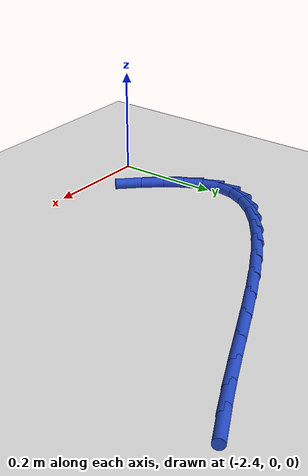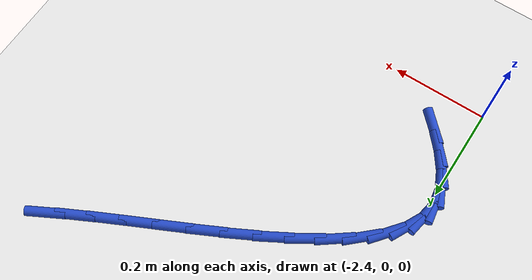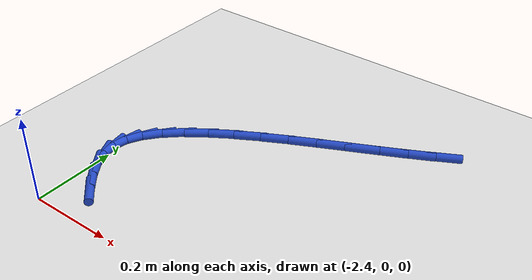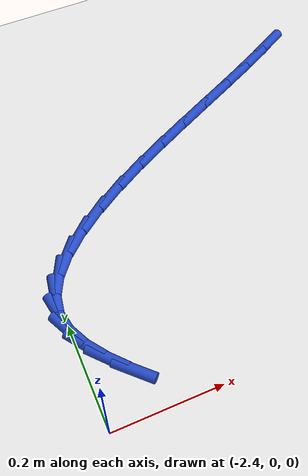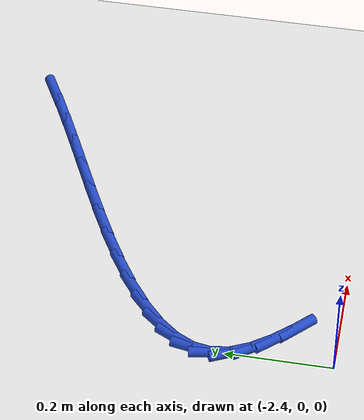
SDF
<sdf version="1.6">
 <world name="default">
  <model name="ground_plane">
   <static>1</static>
   <link name="link">
    <collision name="collision">
     <geometry><plane><normal>0 0 1</normal><size>100 100</size></plane></geometry>
     <surface><friction><ode><mu>100</mu><mu2>50</mu2></ode></friction></surface>
    </collision>
    <visual name="visual">
     <cast_shadows>0</cast_shadows>
     <geometry><plane><normal>0 0 1</normal><size>100 100</size></plane></geometry>
     <material>
      <script><uri>file://media/materials/scripts/gazebo.material</uri><name>Gazebo/WhiteGlow</name></script>
     </material>
    </visual>
   </link>
  </model>
  <model name="line">
   <link name="link_57">
    <pose>-1.7882824068994763 0.6488655964769138 0.01 0 1.57 0.4933935872202117</pose>
    <collision name="collision">
     <geometry><cylinder><radius>0.01</radius><length>0.08</length></cylinder></geometry>
    </collision>
    <visual name="visual">
     <material>
      <script><name>Gazebo/Blue</name><uri>file://media/materials/scripts/gazebo.material</uri></script>
     </material>
     <geometry><cylinder><radius>0.01</radius><length>0.08</length></cylinder></geometry>
    </visual>
   </link>
   <link name="link_58">
    <pose>-1.8399421476125468 0.6210853053375922 0.01 0 1.57 0.4704093641441977</pose>
    <collision name="collision">
     <geometry><cylinder><radius>0.01</radius><length>0.08</length></cylinder></geometry>
    </collision>
    <visual name="visual">
     <material>
      <script><name>Gazebo/Blue</name><uri>file://media/materials/scripts/gazebo.material</uri></script>
     </material>
     <geometry><cylinder><radius>0.01</radius><length>0.08</length></cylinder></geometry>
    </visual>
   </link>
   <link name="link_59">
    <pose>-1.8946203905497763 0.5932824578877812 0.01 0 1.57 0.45666396141137294</pose>
    <collision name="collision">
     <geometry><cylinder><radius>0.01</radius><length>0.08</length></cylinder></geometry>
    </collision>
    <visual name="visual">
     <material>
      <script><name>Gazebo/Blue</name><uri>file://media/materials/scripts/gazebo.material</uri></script>
     </material>
     <geometry><cylinder><radius>0.01</radius><length>0.08</length></cylinder></geometry>
    </visual>
   </link>
   <link name="link_60">
    <pose>-1.9518559533707762 0.5651625872057742 0.01 0 1.57 0.4522741626615246</pose>
    <collision name="collision">
     <geometry><cylinder><radius>0.01</radius><length>0.08</length></cylinder></geometry>
    </collision>
    <visual name="visual">
     <material>
      <script><name>Gazebo/Blue</name><uri>file://media/materials/scripts/gazebo.material</uri></script>
     </material>
     <geometry><cylinder><radius>0.01</radius><length>0.08</length></cylinder></geometry>
    </visual>
   </link>
   <link name="link_61">
    <pose>-2.010507952283484 0.5366657524746595 0.01 0 1.57 0.4565730462190267</pose>
    <collision name="collision">
     <geometry><cylinder><radius>0.01</radius><length>0.08</length></cylinder></geometry>
    </collision>
    <visual name="visual">
     <material>
      <script><name>Gazebo/Blue</name><uri>file://media/materials/scripts/gazebo.material</uri></script>
     </material>
     <geometry><cylinder><radius>0.01</radius><length>0.08</length></cylinder></geometry>
    </visual>
   </link>
   <link name="link_62">
    <pose>-2.06936190631584 0.5077574070559661 0.01 0 1.57 0.4696279134727496</pose>
    <collision name="collision">
     <geometry><cylinder><radius>0.01</radius><length>0.08</length></cylinder></geometry>
    </collision>
    <visual name="visual">
     <material>
      <script><name>Gazebo/Blue</name><uri>file://media/materials/scripts/gazebo.material</uri></script>
     </material>
     <geometry><cylinder><radius>0.01</radius><length>0.08</length></cylinder></geometry>
    </visual>
   </link>
   <link name="link_63">
    <pose>-2.127203334495774 0.47840300431122285 0.01 0 1.57 0.4923897369800903</pose>
    <collision name="collision">
     <geometry><cylinder><radius>0.01</radius><length>0.08</length></cylinder></geometry>
    </collision>
    <visual name="visual">
     <material>
      <script><name>Gazebo/Blue</name><uri>file://media/materials/scripts/gazebo.material</uri></script>
     </material>
     <geometry><cylinder><radius>0.01</radius><length>0.08</length></cylinder></geometry>
    </visual>
   </link>
   <link name="link_64">
    <pose>-2.182817755851227 0.44856799760195876 0.01 0 1.57 0.5268715682375054</pose>
    <collision name="collision">
     <geometry><cylinder><radius>0.01</radius><length>0.08</length></cylinder></geometry>
    </collision>
    <visual name="visual">
     <material>
      <script><name>Gazebo/Blue</name><uri>file://media/materials/scripts/gazebo.material</uri></script>
     </material>
     <geometry><cylinder><radius>0.01</radius><length>0.08</length></cylinder></geometry>
    </visual>
   </link>
   <link name="link_65">
    <pose>-2.2349906894101323 0.41821784028970255 0.01 0 1.57 0.5765797628587735</pose>
    <collision name="collision">
     <geometry><cylinder><radius>0.01</radius><length>0.08</length></cylinder></geometry>
    </collision>
    <visual name="visual">
     <material>
      <script><name>Gazebo/Blue</name><uri>file://media/materials/scripts/gazebo.material</uri></script>
     </material>
     <geometry><cylinder><radius>0.01</radius><length>0.08</length></cylinder></geometry>
    </visual>
   </link>
   <link name="link_66">
    <pose>-2.2825076542004283 0.38731798573598303 0.01 0 1.57 0.6473198722779677</pose>
    <collision name="collision">
     <geometry><cylinder><radius>0.01</radius><length>0.08</length></cylinder></geometry>
    </collision>
    <visual name="visual">
     <material>
      <script><name>Gazebo/Blue</name><uri>file://media/materials/scripts/gazebo.material</uri></script>
     </material>
     <geometry><cylinder><radius>0.01</radius><length>0.08</length></cylinder></geometry>
    </visual>
   </link>
   <link name="link_67">
    <pose>-2.324154169250049 0.355833887302329 0.01 0 1.57 0.7485332283813007</pose>
    <collision name="collision">
     <geometry><cylinder><radius>0.01</radius><length>0.08</length></cylinder></geometry>
    </collision>
    <visual name="visual">
     <material>
      <script><name>Gazebo/Blue</name><uri>file://media/materials/scripts/gazebo.material</uri></script>
     </material>
     <geometry><cylinder><radius>0.01</radius><length>0.08</length></cylinder></geometry>
    </visual>
   </link>
   <link name="link_68">
    <pose>-2.3587157535869316 0.3237309983502697 0.01 0 1.57 0.8949916680700544</pose>
    <collision name="collision">
     <geometry><cylinder><radius>0.01</radius><length>0.08</length></cylinder></geometry>
    </collision>
    <visual name="visual">
     <material>
      <script><name>Gazebo/Blue</name><uri>file://media/materials/scripts/gazebo.material</uri></script>
     </material>
     <geometry><cylinder><radius>0.01</radius><length>0.08</length></cylinder></geometry>
    </visual>
   </link>
   <link name="link_69">
    <pose>-2.384977926239011 0.2909747722413337 0.01 0 1.57 1.1065215983021182</pose>
    <collision name="collision">
     <geometry><cylinder><radius>0.01</radius><length>0.08</length></cylinder></geometry>
    </collision>
    <visual name="visual">
     <material>
      <script><name>Gazebo/Blue</name><uri>file://media/materials/scripts/gazebo.material</uri></script>
     </material>
     <geometry><cylinder><radius>0.01</radius><length>0.08</length></cylinder></geometry>
    </visual>
   </link>
   <link name="link_70">
    <pose>-2.4017262062342244 0.25753066233704996 0.01 0 1.57 1.3963933133466595</pose>
    <collision name="collision">
     <geometry><cylinder><radius>0.01</radius><length>0.08</length></cylinder></geometry>
    </collision>
    <visual name="visual">
     <material>
      <script><name>Gazebo/Blue</name><uri>file://media/materials/scripts/gazebo.material</uri></script>
     </material>
     <geometry><cylinder><radius>0.01</radius><length>0.08</length></cylinder></geometry>
    </visual>
   </link>
   <link name="link_71">
    <pose>-2.4077461126005075 0.22336412199894706 0.01 0 1.57 -1.4081685591763498</pose>
    <collision name="collision">
     <geometry><cylinder><radius>0.01</radius><length>0.08</length></cylinder></geometry>
    </collision>
    <visual name="visual">
     <material>
      <script><name>Gazebo/Blue</name><uri>file://media/materials/scripts/gazebo.material</uri></script>
     </material>
     <geometry><cylinder><radius>0.01</radius><length>0.08</length></cylinder></geometry>
    </visual>
   </link>
   <link name="link_72">
    <pose>-2.402015639382396 0.1884385705458123 0.01 0 1.57 -1.134678397477323</pose>
    <collision name="collision">
     <geometry><cylinder><radius>0.01</radius><length>0.08</length></cylinder></geometry>
    </collision>
    <visual name="visual">
     <material>
      <script><name>Gazebo/Blue</name><uri>file://media/materials/scripts/gazebo.material</uri></script>
     </material>
     <geometry><cylinder><radius>0.01</radius><length>0.08</length></cylinder></geometry>
    </visual>
   </link>
   <link name="link_73">
    <pose>-2.385358827044445 0.15269791859660872 0.01 0 1.57 -0.9583298538635758</pose>
    <collision name="collision">
     <geometry><cylinder><radius>0.01</radius><length>0.08</length></cylinder></geometry>
    </collision>
    <visual name="visual">
     <material>
      <script><name>Gazebo/Blue</name><uri>file://media/materials/scripts/gazebo.material</uri></script>
     </material>
     <geometry><cylinder><radius>0.01</radius><length>0.08</length></cylinder></geometry>
    </visual>
   </link>
   <link name="link_74">
    <pose>-2.35962784050536 0.11607521172858677 0.01 0 1.57 -0.8509642586159476</pose>
    <collision name="collision">
     <geometry><cylinder><radius>0.01</radius><length>0.08</length></cylinder></geometry>
    </collision>
    <visual name="visual">
     <material>
      <script><name>Gazebo/Blue</name><uri>file://media/materials/scripts/gazebo.material</uri></script>
     </material>
     <geometry><cylinder><radius>0.01</radius><length>0.08</length></cylinder></geometry>
    </visual>
   </link>
   <link name="link_75">
    <pose>-2.3266859527557564 0.0785033781308113 0.01 0 1.57 -0.7892811523324769</pose>
    <collision name="collision">
     <geometry><cylinder><radius>0.01</radius><length>0.08</length></cylinder></geometry>
    </collision>
    <visual name="visual">
     <material>
      <script><name>Gazebo/Blue</name><uri>file://media/materials/scripts/gazebo.material</uri></script>
     </material>
     <geometry><cylinder><radius>0.01</radius><length>0.08</length></cylinder></geometry>
    </visual>
   </link>
  </model>
 </world>
</sdf>
